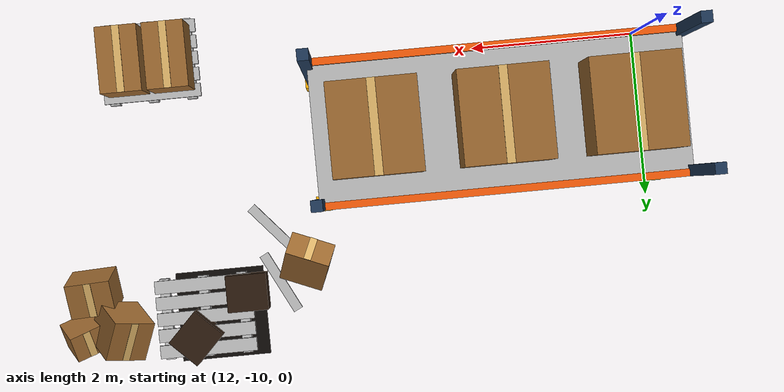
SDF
<sdf version="1.9">
 <world name="factory">
  <model name="rack_1_1_0">
   <static>true</static>
   <pose>14 -9 0 0 0 0</pose>
   <link name="body">
    <visual name="post0_visual">
     <pose>-2 -0.75 1.8 0 0 0</pose>
     <geometry><box><size>0.12 0.12 3.6</size></box></geometry>
     <material><ambient>.12 .22 .34 1</ambient><diffuse>.12 .22 .34 1</diffuse></material>
    </visual>
    <collision name="post0_collision">
     <pose>-2 -0.75 1.8 0 0 0</pose>
     <geometry><box><size>0.12 0.12 3.6</size></box></geometry>
    </collision>
    <visual name="guard0_visual">
     <pose>-2 -0.75 0.275 0 0 0</pose>
     <geometry><box><size>0.18 0.18 0.55</size></box></geometry>
     <material><ambient>1 .7 .02 1</ambient><diffuse>1 .7 .02 1</diffuse></material>
    </visual>
    <collision name="guard0_collision">
     <pose>-2 -0.75 0.275 0 0 0</pose>
     <geometry><box><size>0.18 0.18 0.55</size></box></geometry>
    </collision>
    <visual name="post1_visual">
     <pose>2 -0.75 1.8 0 0 0</pose>
     <geometry><box><size>0.12 0.12 3.6</size></box></geometry>
     <material><ambient>.12 .22 .34 1</ambient><diffuse>.12 .22 .34 1</diffuse></material>
    </visual>
    <collision name="post1_collision">
     <pose>2 -0.75 1.8 0 0 0</pose>
     <geometry><box><size>0.12 0.12 3.6</size></box></geometry>
    </collision>
    <visual name="guard1_visual">
     <pose>2 -0.75 0.275 0 0 0</pose>
     <geometry><box><size>0.18 0.18 0.55</size></box></geometry>
     <material><ambient>1 .7 .02 1</ambient><diffuse>1 .7 .02 1</diffuse></material>
    </visual>
    <collision name="guard1_collision">
     <pose>2 -0.75 0.275 0 0 0</pose>
     <geometry><box><size>0.18 0.18 0.55</size></box></geometry>
    </collision>
    <visual name="post2_visual">
     <pose>-2 0.75 1.8 0 0 0</pose>
     <geometry><box><size>0.12 0.12 3.6</size></box></geometry>
     <material><ambient>.12 .22 .34 1</ambient><diffuse>.12 .22 .34 1</diffuse></material>
    </visual>
    <collision name="post2_collision">
     <pose>-2 0.75 1.8 0 0 0</pose>
     <geometry><box><size>0.12 0.12 3.6</size></box></geometry>
    </collision>
    <visual name="guard2_visual">
     <pose>-2 0.75 0.275 0 0 0</pose>
     <geometry><box><size>0.18 0.18 0.55</size></box></geometry>
     <material><ambient>1 .7 .02 1</ambient><diffuse>1 .7 .02 1</diffuse></material>
    </visual>
    <collision name="guard2_collision">
     <pose>-2 0.75 0.275 0 0 0</pose>
     <geometry><box><size>0.18 0.18 0.55</size></box></geometry>
    </collision>
    <visual name="post3_visual">
     <pose>2 0.75 1.8 0 0 0</pose>
     <geometry><box><size>0.12 0.12 3.6</size></box></geometry>
     <material><ambient>.12 .22 .34 1</ambient><diffuse>.12 .22 .34 1</diffuse></material>
    </visual>
    <collision name="post3_collision">
     <pose>2 0.75 1.8 0 0 0</pose>
     <geometry><box><size>0.12 0.12 3.6</size></box></geometry>
    </collision>
    <visual name="guard3_visual">
     <pose>2 0.75 0.275 0 0 0</pose>
     <geometry><box><size>0.18 0.18 0.55</size></box></geometry>
     <material><ambient>1 .7 .02 1</ambient><diffuse>1 .7 .02 1</diffuse></material>
    </visual>
    <collision name="guard3_collision">
     <pose>2 0.75 0.275 0 0 0</pose>
     <geometry><box><size>0.18 0.18 0.55</size></box></geometry>
    </collision>
    <visual name="shelf0_visual">
     <pose>0 0 0.3 0 0 0</pose>
     <geometry><mesh><uri>model://factory_scene_assets/meshes/wood_010.dae</uri></mesh></geometry>
    </visual>
    <collision name="shelf0_collision">
     <pose>0 0 0.3 0 0 0</pose>
     <geometry><box><size>4 1.5 0.08</size></box></geometry>
    </collision>
    <visual name="beam0_0_visual">
     <pose>0 -0.77 0.3 0 0 0</pose>
     <geometry><box><size>4 0.08 0.18</size></box></geometry>
     <material><ambient>.95 .35 .035 1</ambient><diffuse>.95 .35 .035 1</diffuse></material>
    </visual>
    <collision name="beam0_0_collision">
     <pose>0 -0.77 0.3 0 0 0</pose>
     <geometry><box><size>4 0.08 0.18</size></box></geometry>
    </collision>
    <visual name="beam0_1_visual">
     <pose>0 0.77 0.3 0 0 0</pose>
     <geometry><box><size>4 0.08 0.18</size></box></geometry>
     <material><ambient>.95 .35 .035 1</ambient><diffuse>.95 .35 .035 1</diffuse></material>
    </visual>
    <collision name="beam0_1_collision">
     <pose>0 0.77 0.3 0 0 0</pose>
     <geometry><box><size>4 0.08 0.18</size></box></geometry>
    </collision>
    <visual name="cargo0_0_visual">
     <pose>-1.35 0 0.665 0 0 0</pose>
     <geometry><box><size>0.95 1 0.65</size></box></geometry>
     <material><ambient>.60 .40 .18 1</ambient><diffuse>.60 .40 .18 1</diffuse></material>
    </visual>
    <collision name="cargo0_0_collision">
     <pose>-1.35 0 0.665 0 0 0</pose>
     <geometry><box><size>0.95 1 0.65</size></box></geometry>
    </collision>
    <visual name="cargo0_0_tape_visual">
     <pose>-1.35 0 0.993 0 0 0</pose>
     <geometry><box><size>0.09 1 0.006</size></box></geometry>
     <material><ambient>.85 .69 .4 1</ambient><diffuse>.85 .69 .4 1</diffuse></material>
    </visual>
    <visual name="cargo0_1_visual">
     <pose>0 0 0.665 0 0 0</pose>
     <geometry><box><size>0.95 1 0.65</size></box></geometry>
     <material><ambient>.60 .40 .18 1</ambient><diffuse>.60 .40 .18 1</diffuse></material>
    </visual>
    <collision name="cargo0_1_collision">
     <pose>0 0 0.665 0 0 0</pose>
     <geometry><box><size>0.95 1 0.65</size></box></geometry>
    </collision>
    <visual name="cargo0_1_tape_visual">
     <pose>0 0 0.993 0 0 0</pose>
     <geometry><box><size>0.09 1 0.006</size></box></geometry>
     <material><ambient>.85 .69 .4 1</ambient><diffuse>.85 .69 .4 1</diffuse></material>
    </visual>
    <visual name="cargo0_2_visual">
     <pose>1.35 0 0.665 0 0 0</pose>
     <geometry><box><size>0.95 1 0.65</size></box></geometry>
     <material><ambient>.60 .40 .18 1</ambient><diffuse>.60 .40 .18 1</diffuse></material>
    </visual>
    <collision name="cargo0_2_collision">
     <pose>1.35 0 0.665 0 0 0</pose>
     <geometry><box><size>0.95 1 0.65</size></box></geometry>
    </collision>
    <visual name="cargo0_2_tape_visual">
     <pose>1.35 0 0.993 0 0 0</pose>
     <geometry><box><size>0.09 1 0.006</size></box></geometry>
     <material><ambient>.85 .69 .4 1</ambient><diffuse>.85 .69 .4 1</diffuse></material>
    </visual>
    <visual name="shelf1_visual">
     <pose>0 0 1.4 0 0 0</pose>
     <geometry><mesh><uri>model://factory_scene_assets/meshes/wood_010.dae</uri></mesh></geometry>
    </visual>
    <collision name="shelf1_collision">
     <pose>0 0 1.4 0 0 0</pose>
     <geometry><box><size>4 1.5 0.08</size></box></geometry>
    </collision>
    <visual name="beam1_0_visual">
     <pose>0 -0.77 1.4 0 0 0</pose>
     <geometry><box><size>4 0.08 0.18</size></box></geometry>
     <material><ambient>.95 .35 .035 1</ambient><diffuse>.95 .35 .035 1</diffuse></material>
    </visual>
    <collision name="beam1_0_collision">
     <pose>0 -0.77 1.4 0 0 0</pose>
     <geometry><box><size>4 0.08 0.18</size></box></geometry>
    </collision>
    <visual name="beam1_1_visual">
     <pose>0 0.77 1.4 0 0 0</pose>
     <geometry><box><size>4 0.08 0.18</size></box></geometry>
     <material><ambient>.95 .35 .035 1</ambient><diffuse>.95 .35 .035 1</diffuse></material>
    </visual>
    <collision name="beam1_1_collision">
     <pose>0 0.77 1.4 0 0 0</pose>
     <geometry><box><size>4 0.08 0.18</size></box></geometry>
    </collision>
    <visual name="cargo1_0_visual">
     <pose>-1.35 0 1.765 0 0 0</pose>
     <geometry><box><size>0.95 1 0.65</size></box></geometry>
     <material><ambient>.60 .40 .18 1</ambient><diffuse>.60 .40 .18 1</diffuse></material>
    </visual>
    <collision name="cargo1_0_collision">
     <pose>-1.35 0 1.765 0 0 0</pose>
     <geometry><box><size>0.95 1 0.65</size></box></geometry>
    </collision>
    <visual name="cargo1_0_tape_visual">
     <pose>-1.35 0 2.093 0 0 0</pose>
     <geometry><box><size>0.09 1 0.006</size></box></geometry>
     <material><ambient>.85 .69 .4 1</ambient><diffuse>.85 .69 .4 1</diffuse></material>
    </visual>
    <visual name="cargo1_1_visual">
     <pose>0 0 1.765 0 0 0</pose>
     <geometry><box><size>0.95 1 0.65</size></box></geometry>
     <material><ambient>.60 .40 .18 1</ambient><diffuse>.60 .40 .18 1</diffuse></material>
    </visual>
    <collision name="cargo1_1_collision">
     <pose>0 0 1.765 0 0 0</pose>
     <geometry><box><size>0.95 1 0.65</size></box></geometry>
    </collision>
    <visual name="cargo1_1_tape_visual">
     <pose>0 0 2.093 0 0 0</pose>
     <geometry><box><size>0.09 1 0.006</size></box></geometry>
     <material><ambient>.85 .69 .4 1</ambient><diffuse>.85 .69 .4 1</diffuse></material>
    </visual>
    <visual name="cargo1_2_visual">
     <pose>1.35 0 1.765 0 0 0</pose>
     <geometry><box><size>0.95 1 0.65</size></box></geometry>
     <material><ambient>.60 .40 .18 1</ambient><diffuse>.60 .40 .18 1</diffuse></material>
    </visual>
    <collision name="cargo1_2_collision">
     <pose>1.35 0 1.765 0 0 0</pose>
     <geometry><box><size>0.95 1 0.65</size></box></geometry>
    </collision>
    <visual name="cargo1_2_tape_visual">
     <pose>1.35 0 2.093 0 0 0</pose>
     <geometry><box><size>0.09 1 0.006</size></box></geometry>
     <material><ambient>.85 .69 .4 1</ambient><diffuse>.85 .69 .4 1</diffuse></material>
    </visual>
    <visual name="shelf2_visual">
     <pose>0 0 2.5 0 0 0</pose>
     <geometry><mesh><uri>model://factory_scene_assets/meshes/wood_010.dae</uri></mesh></geometry>
    </visual>
    <collision name="shelf2_collision">
     <pose>0 0 2.5 0 0 0</pose>
     <geometry><box><size>4 1.5 0.08</size></box></geometry>
    </collision>
    <visual name="beam2_0_visual">
     <pose>0 -0.77 2.5 0 0 0</pose>
     <geometry><box><size>4 0.08 0.18</size></box></geometry>
     <material><ambient>.95 .35 .035 1</ambient><diffuse>.95 .35 .035 1</diffuse></material>
    </visual>
    <collision name="beam2_0_collision">
     <pose>0 -0.77 2.5 0 0 0</pose>
     <geometry><box><size>4 0.08 0.18</size></box></geometry>
    </collision>
    <visual name="beam2_1_visual">
     <pose>0 0.77 2.5 0 0 0</pose>
     <geometry><box><size>4 0.08 0.18</size></box></geometry>
     <material><ambient>.95 .35 .035 1</ambient><diffuse>.95 .35 .035 1</diffuse></material>
    </visual>
    <collision name="beam2_1_collision">
     <pose>0 0.77 2.5 0 0 0</pose>
     <geometry><box><size>4 0.08 0.18</size></box></geometry>
    </collision>
    <visual name="cargo2_0_visual">
     <pose>-1.35 0 2.865 0 0 0</pose>
     <geometry><box><size>0.95 1 0.65</size></box></geometry>
     <material><ambient>.60 .40 .18 1</ambient><diffuse>.60 .40 .18 1</diffuse></material>
    </visual>
    <collision name="cargo2_0_collision">
     <pose>-1.35 0 2.865 0 0 0</pose>
     <geometry><box><size>0.95 1 0.65</size></box></geometry>
    </collision>
    <visual name="cargo2_0_tape_visual">
     <pose>-1.35 0 3.193 0 0 0</pose>
     <geometry><box><size>0.09 1 0.006</size></box></geometry>
     <material><ambient>.85 .69 .4 1</ambient><diffuse>.85 .69 .4 1</diffuse></material>
    </visual>
    <visual name="cargo2_1_visual">
     <pose>0 0 2.865 0 0 0</pose>
     <geometry><box><size>0.95 1 0.65</size></box></geometry>
     <material><ambient>.60 .40 .18 1</ambient><diffuse>.60 .40 .18 1</diffuse></material>
    </visual>
    <collision name="cargo2_1_collision">
     <pose>0 0 2.865 0 0 0</pose>
     <geometry><box><size>0.95 1 0.65</size></box></geometry>
    </collision>
    <visual name="cargo2_1_tape_visual">
     <pose>0 0 3.193 0 0 0</pose>
     <geometry><box><size>0.09 1 0.006</size></box></geometry>
     <material><ambient>.85 .69 .4 1</ambient><diffuse>.85 .69 .4 1</diffuse></material>
    </visual>
    <visual name="cargo2_2_visual">
     <pose>1.35 0 2.865 0 0 0</pose>
     <geometry><box><size>0.95 1 0.65</size></box></geometry>
     <material><ambient>.60 .40 .18 1</ambient><diffuse>.60 .40 .18 1</diffuse></material>
    </visual>
    <collision name="cargo2_2_collision">
     <pose>1.35 0 2.865 0 0 0</pose>
     <geometry><box><size>0.95 1 0.65</size></box></geometry>
    </collision>
    <visual name="cargo2_2_tape_visual">
     <pose>1.35 0 3.193 0 0 0</pose>
     <geometry><box><size>0.09 1 0.006</size></box></geometry>
     <material><ambient>.85 .69 .4 1</ambient><diffuse>.85 .69 .4 1</diffuse></material>
    </visual>
   </link>
  </model>
  <model name="organized_pallet_1_0">
   <static>true</static>
   <pose>18 -10.2 0 0 0 0</pose>
   <link name="body">
    <visual name="runner0_visual">
     <pose>-0.48 0 0.065 0 0 0</pose>
     <geometry><mesh><uri>model://factory_scene_assets/meshes/wood_011.dae</uri></mesh></geometry>
    </visual>
    <collision name="runner0_collision">
     <pose>-0.48 0 0.065 0 0 0</pose>
     <geometry><box><size>0.12 1 0.13</size></box></geometry>
    </collision>
    <visual name="runner1_visual">
     <pose>0 0 0.065 0 0 0</pose>
     <geometry><mesh><uri>model://factory_scene_assets/meshes/wood_011.dae</uri></mesh></geometry>
    </visual>
    <collision name="runner1_collision">
     <pose>0 0 0.065 0 0 0</pose>
     <geometry><box><size>0.12 1 0.13</size></box></geometry>
    </collision>
    <visual name="runner2_visual">
     <pose>0.48 0 0.065 0 0 0</pose>
     <geometry><mesh><uri>model://factory_scene_assets/meshes/wood_011.dae</uri></mesh></geometry>
    </visual>
    <collision name="runner2_collision">
     <pose>0.48 0 0.065 0 0 0</pose>
     <geometry><box><size>0.12 1 0.13</size></box></geometry>
    </collision>
    <visual name="plank0_visual">
     <pose>0 -0.4 0.155 0 0 0</pose>
     <geometry><mesh><uri>model://factory_scene_assets/meshes/wood_012.dae</uri></mesh></geometry>
    </visual>
    <collision name="plank0_collision">
     <pose>0 -0.4 0.155 0 0 0</pose>
     <geometry><box><size>1.2 0.16 0.05</size></box></geometry>
    </collision>
    <visual name="plank1_visual">
     <pose>0 -0.2 0.155 0 0 0</pose>
     <geometry><mesh><uri>model://factory_scene_assets/meshes/wood_012.dae</uri></mesh></geometry>
    </visual>
    <collision name="plank1_collision">
     <pose>0 -0.2 0.155 0 0 0</pose>
     <geometry><box><size>1.2 0.16 0.05</size></box></geometry>
    </collision>
    <visual name="plank2_visual">
     <pose>0 0 0.155 0 0 0</pose>
     <geometry><mesh><uri>model://factory_scene_assets/meshes/wood_012.dae</uri></mesh></geometry>
    </visual>
    <collision name="plank2_collision">
     <pose>0 0 0.155 0 0 0</pose>
     <geometry><box><size>1.2 0.16 0.05</size></box></geometry>
    </collision>
    <visual name="plank3_visual">
     <pose>0 0.2 0.155 0 0 0</pose>
     <geometry><mesh><uri>model://factory_scene_assets/meshes/wood_012.dae</uri></mesh></geometry>
    </visual>
    <collision name="plank3_collision">
     <pose>0 0.2 0.155 0 0 0</pose>
     <geometry><box><size>1.2 0.16 0.05</size></box></geometry>
    </collision>
    <visual name="plank4_visual">
     <pose>0 0.4 0.155 0 0 0</pose>
     <geometry><mesh><uri>model://factory_scene_assets/meshes/wood_012.dae</uri></mesh></geometry>
    </visual>
    <collision name="plank4_collision">
     <pose>0 0.4 0.155 0 0 0</pose>
     <geometry><box><size>1.2 0.16 0.05</size></box></geometry>
    </collision>
    <visual name="load0_visual">
     <pose>-0.28 0 0.505 0 0 0</pose>
     <geometry><box><size>0.5 0.8 0.65</size></box></geometry>
     <material><ambient>.60 .40 .18 1</ambient><diffuse>.60 .40 .18 1</diffuse></material>
    </visual>
    <collision name="load0_collision">
     <pose>-0.28 0 0.505 0 0 0</pose>
     <geometry><box><size>0.5 0.8 0.65</size></box></geometry>
    </collision>
    <visual name="load0_tape_visual">
     <pose>-0.28 0 0.833 0 0 0</pose>
     <geometry><box><size>0.09 0.8 0.006</size></box></geometry>
     <material><ambient>.85 .69 .4 1</ambient><diffuse>.85 .69 .4 1</diffuse></material>
    </visual>
    <visual name="load1_visual">
     <pose>0.28 0 0.505 0 0 0</pose>
     <geometry><box><size>0.5 0.8 0.65</size></box></geometry>
     <material><ambient>.60 .40 .18 1</ambient><diffuse>.60 .40 .18 1</diffuse></material>
    </visual>
    <collision name="load1_collision">
     <pose>0.28 0 0.505 0 0 0</pose>
     <geometry><box><size>0.5 0.8 0.65</size></box></geometry>
    </collision>
    <visual name="load1_tape_visual">
     <pose>0.28 0 0.833 0 0 0</pose>
     <geometry><box><size>0.09 0.8 0.006</size></box></geometry>
     <material><ambient>.85 .69 .4 1</ambient><diffuse>.85 .69 .4 1</diffuse></material>
    </visual>
   </link>
  </model>
  <model name="fallen_pallet_3">
   <static>true</static>
   <pose>17.6 -7 0 0 0 0</pose>
   <link name="body">
    <visual name="runner0_visual">
     <pose>-0.48 0 0.065 0 0 0</pose>
     <geometry><mesh><uri>model://factory_scene_assets/meshes/wood_011.dae</uri></mesh></geometry>
    </visual>
    <collision name="runner0_collision">
     <pose>-0.48 0 0.065 0 0 0</pose>
     <geometry><box><size>0.12 1 0.13</size></box></geometry>
    </collision>
    <visual name="runner1_visual">
     <pose>0 0 0.065 0 0 0</pose>
     <geometry><mesh><uri>model://factory_scene_assets/meshes/wood_011.dae</uri></mesh></geometry>
    </visual>
    <collision name="runner1_collision">
     <pose>0 0 0.065 0 0 0</pose>
     <geometry><box><size>0.12 1 0.13</size></box></geometry>
    </collision>
    <visual name="runner2_visual">
     <pose>0.48 0 0.065 0 0 0</pose>
     <geometry><mesh><uri>model://factory_scene_assets/meshes/wood_011.dae</uri></mesh></geometry>
    </visual>
    <collision name="runner2_collision">
     <pose>0.48 0 0.065 0 0 0</pose>
     <geometry><box><size>0.12 1 0.13</size></box></geometry>
    </collision>
    <visual name="plank0_visual">
     <pose>0 -0.4 0.155 0 0 0</pose>
     <geometry><mesh><uri>model://factory_scene_assets/meshes/wood_012.dae</uri></mesh></geometry>
    </visual>
    <collision name="plank0_collision">
     <pose>0 -0.4 0.155 0 0 0</pose>
     <geometry><box><size>1.2 0.16 0.05</size></box></geometry>
    </collision>
    <visual name="plank1_visual">
     <pose>0 -0.2 0.155 0 0 0</pose>
     <geometry><mesh><uri>model://factory_scene_assets/meshes/wood_012.dae</uri></mesh></geometry>
    </visual>
    <collision name="plank1_collision">
     <pose>0 -0.2 0.155 0 0 0</pose>
     <geometry><box><size>1.2 0.16 0.05</size></box></geometry>
    </collision>
    <visual name="plank2_visual">
     <pose>0 0 0.155 0 0 0</pose>
     <geometry><mesh><uri>model://factory_scene_assets/meshes/wood_012.dae</uri></mesh></geometry>
    </visual>
    <collision name="plank2_collision">
     <pose>0 0 0.155 0 0 0</pose>
     <geometry><box><size>1.2 0.16 0.05</size></box></geometry>
    </collision>
    <visual name="plank3_visual">
     <pose>0 0.2 0.155 0 0 0</pose>
     <geometry><mesh><uri>model://factory_scene_assets/meshes/wood_012.dae</uri></mesh></geometry>
    </visual>
    <collision name="plank3_collision">
     <pose>0 0.2 0.155 0 0 0</pose>
     <geometry><box><size>1.2 0.16 0.05</size></box></geometry>
    </collision>
    <visual name="plank4_visual">
     <pose>0 0.4 0.155 0 0 0</pose>
     <geometry><mesh><uri>model://factory_scene_assets/meshes/wood_012.dae</uri></mesh></geometry>
    </visual>
    <collision name="plank4_collision">
     <pose>0 0.4 0.155 0 0 0</pose>
     <geometry><box><size>1.2 0.16 0.05</size></box></geometry>
    </collision>
   </link>
  </model>
  <model name="fallen_box_03_0">
   <static>true</static>
   <pose>18.6 -6.937042 0 0 0 0</pose>
   <link name="body">
    <visual name="box_visual">
     <pose>0 0 0.448821 -0.387706 -0.6062974 -0.163541</pose>
     <geometry><box><size>0.5187283 0.504538 0.5590452</size></box></geometry>
     <material><ambient>.60 .40 .18 1</ambient><diffuse>.60 .40 .18 1</diffuse></material>
    </visual>
    <collision name="box_collision">
     <pose>0 0 0.448821 -0.387706 -0.6062974 -0.163541</pose>
     <geometry><box><size>0.5187283 0.504538 0.5590452</size></box></geometry>
    </collision>
    <visual name="box_tape_visual">
     <pose>-0.1296616 0.1296527 0.663756 -0.387706 -0.6062974 -0.163541</pose>
     <geometry><box><size>0.09 0.504538 0.006</size></box></geometry>
     <material><ambient>.85 .69 .4 1</ambient><diffuse>.85 .69 .4 1</diffuse></material>
    </visual>
   </link>
  </model>
  <model name="fallen_box_03_4">
   <static>true</static>
   <pose>18.92 -7.424159 0 0 0 0</pose>
   <link name="body">
    <visual name="box_visual">
     <pose>0 0 0.3263767 0.3211638 -0.07777431 -3.095901</pose>
     <geometry><box><size>0.5533766 0.4325577 0.4795189</size></box></geometry>
     <material><ambient>.60 .40 .18 1</ambient><diffuse>.60 .40 .18 1</diffuse></material>
    </visual>
    <collision name="box_collision">
     <pose>0 0 0.3263767 0.3211638 -0.07777431 -3.095901</pose>
     <geometry><box><size>0.5533766 0.4325577 0.4795189</size></box></geometry>
    </collision>
    <visual name="box_tape_visual">
     <pose>0.01437812 0.07736962 0.5560272 0.3211638 -0.07777431 -3.095901</pose>
     <geometry><box><size>0.09 0.4325577 0.006</size></box></geometry>
     <material><ambient>.85 .69 .4 1</ambient><diffuse>.85 .69 .4 1</diffuse></material>
    </visual>
   </link>
  </model>
  <model name="fallen_box_03_5">
   <static>true</static>
   <pose>16.28 -7.561007 0 0 0 0</pose>
   <link name="body">
    <visual name="box_visual">
     <pose>0 0 0.3358559 0.6436626 0.006781408 -0.3911208</pose>
     <geometry><box><size>0.5466201 0.3261528 0.5654261</size></box></geometry>
     <material><ambient>.60 .40 .18 1</ambient><diffuse>.60 .40 .18 1</diffuse></material>
    </visual>
    <collision name="box_collision">
     <pose>0 0 0.3358559 0.6436626 0.006781408 -0.3911208</pose>
     <geometry><box><size>0.5466201 0.3261528 0.5654261</size></box></geometry>
    </collision>
    <visual name="box_tape_visual">
     <pose>-0.06393382 -0.159107 0.5643934 0.6436626 0.006781408 -0.3911208</pose>
     <geometry><box><size>0.09 0.3261528 0.006</size></box></geometry>
     <material><ambient>.85 .69 .4 1</ambient><diffuse>.85 .69 .4 1</diffuse></material>
    </visual>
   </link>
  </model>
  <model name="fallen_box_03_6">
   <static>true</static>
   <pose>19.08 -6.903434 0 0 0 0</pose>
   <link name="body">
    <visual name="box_visual">
     <pose>0 0 0.3372153 0.5189435 0.3321575 -2.795865</pose>
     <geometry><box><size>0.4136556 0.3371327 0.4403543</size></box></geometry>
     <material><ambient>.60 .40 .18 1</ambient><diffuse>.60 .40 .18 1</diffuse></material>
    </visual>
    <collision name="box_collision">
     <pose>0 0 0.3372153 0.5189435 0.3321575 -2.795865</pose>
     <geometry><box><size>0.4136556 0.3371327 0.4403543</size></box></geometry>
    </collision>
    <visual name="box_tape_visual">
     <pose>-0.09696393 0.08272313 0.5204172 0.5189435 0.3321575 -2.795865</pose>
     <geometry><box><size>0.09 0.3371327 0.006</size></box></geometry>
     <material><ambient>.85 .69 .4 1</ambient><diffuse>.85 .69 .4 1</diffuse></material>
    </visual>
   </link>
  </model>
  <model name="debris_plank_03_0">
   <static>true</static>
   <pose>16.62577 -7.932566 0 0 0 -0.8548135</pose>
   <link name="body">
    <visual name="wood_visual">
     <pose>0 0 0.023 0 0 0</pose>
     <geometry><mesh><uri>model://factory_scene_assets/meshes/wood_030.dae</uri></mesh></geometry>
    </visual>
    <collision name="wood_collision">
     <pose>0 0 0.023 0 0 0</pose>
     <geometry><box><size>0.918684 0.12 0.045</size></box></geometry>
    </collision>
   </link>
  </model>
  <model name="debris_plank_03_4">
   <static>true</static>
   <pose>16.64007 -7.321255 0 0 0 2.041366</pose>
   <link name="body">
    <visual name="wood_visual">
     <pose>0 0 0.023 0 0 0</pose>
     <geometry><mesh><uri>model://factory_scene_assets/meshes/wood_034.dae</uri></mesh></geometry>
    </visual>
    <collision name="wood_collision">
     <pose>0 0 0.023 0 0 0</pose>
     <geometry><box><size>0.8076616 0.12 0.045</size></box></geometry>
    </collision>
   </link>
  </model>
  <model name="fire_04">
   <static>true</static>
   <pose>17.4 -7 0 0 0 0</pose>
   <link name="body">
    <visual name="scorch_visual">
     <pose>0 0 0.003 0 0 0</pose>
     <geometry><box><size>1.1 1.1 0.004</size></box></geometry>
     <material><ambient>.045 .035 .025 1</ambient><diffuse>.045 .035 .025 1</diffuse></material>
    </visual>
    <visual name="charred_crate0_visual">
     <pose>-0.35 -0.25 0.2 0 0 0</pose>
     <geometry><box><size>0.5 0.45 0.4</size></box></geometry>
     <material><ambient>.16 .095 .045 1</ambient><diffuse>.16 .095 .045 1</diffuse></material>
    </visual>
    <collision name="charred_crate0_collision">
     <pose>-0.35 -0.25 0.2 0 0 0</pose>
     <geometry><box><size>0.5 0.45 0.4</size></box></geometry>
    </collision>
    <visual name="charred_crate1_visual">
     <pose>0.32 0.25 0.2 0 0 0.8</pose>
     <geometry><box><size>0.5 0.45 0.4</size></box></geometry>
     <material><ambient>.16 .095 .045 1</ambient><diffuse>.16 .095 .045 1</diffuse></material>
    </visual>
    <collision name="charred_crate1_collision">
     <pose>0.32 0.25 0.2 0 0 0.8</pose>
     <geometry><box><size>0.5 0.45 0.4</size></box></geometry>
    </collision>
    <particle_emitter name="flame" type="box">
     <pose>0 0 .35 0 -1.57079633 0</pose>
     <emitting>true</emitting>
     <size>.12 .65 .65</size>
     <particle_size>.65 1.15 .65</particle_size>
     <lifetime>0.9</lifetime>
     <rate>40</rate>
     <min_velocity>0.35</min_velocity>
     <max_velocity>1.1</max_velocity>
     <scale_rate>0.02</scale_rate>
     <particle_scatter_ratio>.05</particle_scatter_ratio>
     <color_start>1 1 1 1</color_start>
     <color_end>1 .65 .35 0</color_end>
     <material>
      <diffuse>1 1 1 1</diffuse>
      <emissive>1 .55 .1 1</emissive>
      <pbr><metal><albedo_map>model://factory_scene_assets/textures/flame_colored.png</albedo_map></metal></pbr>
     </material>
    </particle_emitter>
    <particle_emitter name="smoke" type="box">
     <pose>0 0 1.25 0 -1.57079633 0</pose>
     <emitting>true</emitting>
     <size>.15 .85 .85</size>
     <particle_size>.8 .8 .8</particle_size>
     <lifetime>3</lifetime>
     <rate>7</rate>
     <min_velocity>0.45</min_velocity>
     <max_velocity>0.8</max_velocity>
     <scale_rate>0.45</scale_rate>
     <particle_scatter_ratio>.05</particle_scatter_ratio>
     <color_start>1 1 1 1</color_start>
     <color_end>.65 .65 .65 0</color_end>
     <material>
      <diffuse>1 1 1 1</diffuse>
      <emissive>0 0 0 1</emissive>
      <pbr><metal><albedo_map>model://factory_scene_assets/textures/smoke_gray.png</albedo_map></metal></pbr>
     </material>
    </particle_emitter>
    <light name="fire_glow" type="point">
     <pose>0 0 .8 0 0 0</pose>
     <diffuse>1 .38 .025 1</diffuse>
     <cast_shadows>false</cast_shadows>
     <attenuation>
      <range>4</range>
      <constant>1</constant>
      <linear>0.5</linear>
      <quadratic>0.2</quadratic>
     </attenuation>
    </light>
   </link>
  </model>
 </world>
</sdf>
